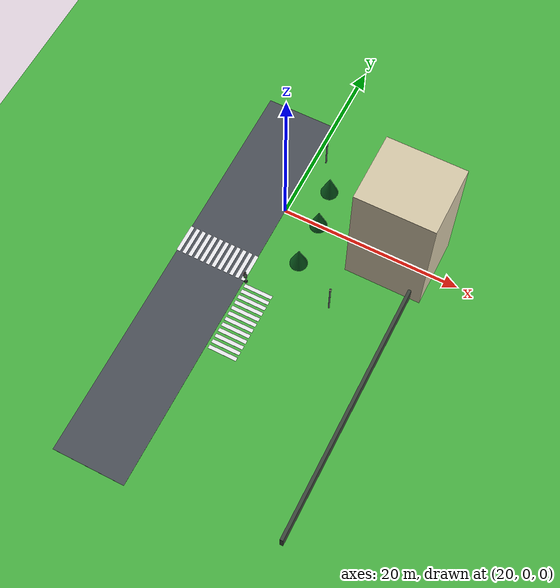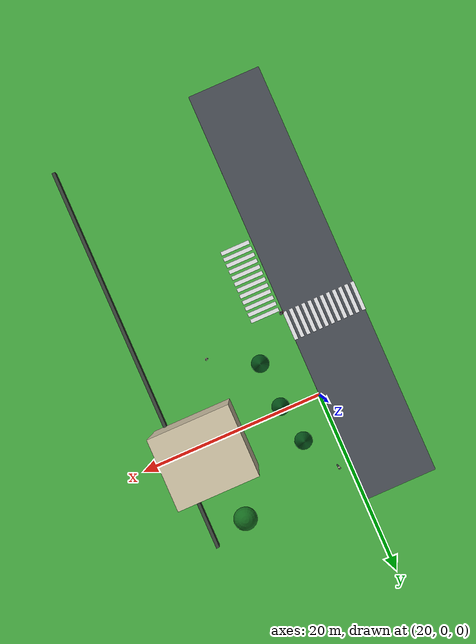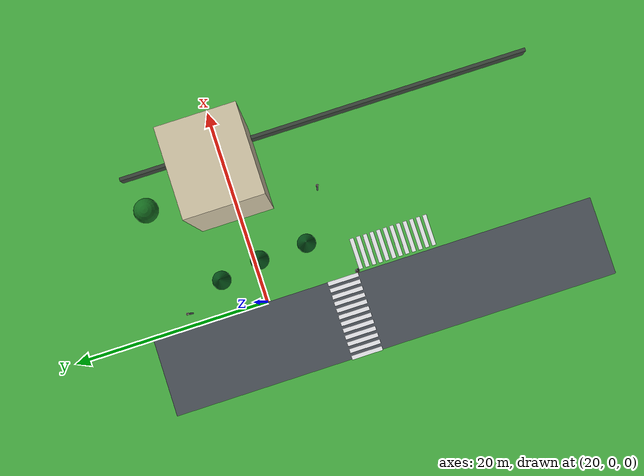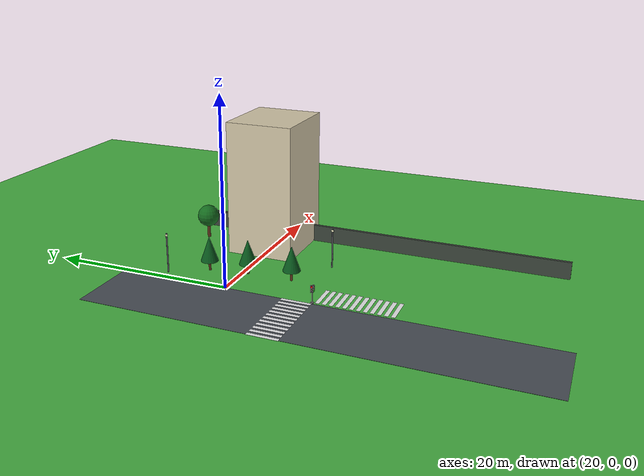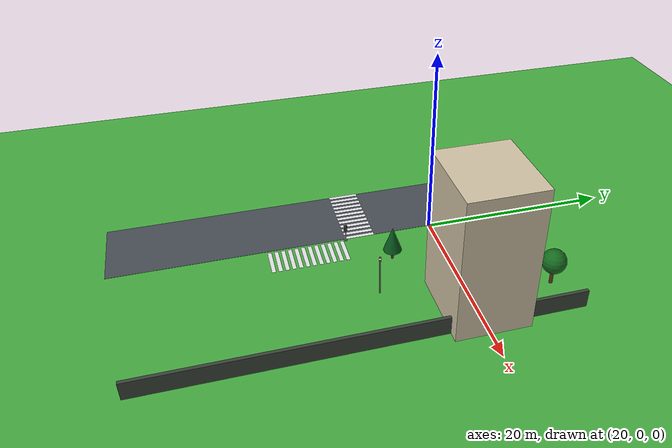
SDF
<sdf version="1.10">
 <world name="city_second">
  <model name="ground_plane">
   <static>true</static>
   <link name="link">
    <collision name="collision">
     <geometry><plane><normal>0 0 1</normal><size>45 46</size></plane></geometry>
    </collision>
    <visual name="visual">
     <geometry><plane><normal>0 0 1</normal><size>45 46</size></plane></geometry>
     <material>
      <ambient>0.280000001 0.689999998 0.25999999 1</ambient>
      <diffuse>0.280000001 0.689999998 0.25999999 1</diffuse>
      <specular>0.0299999993 0.0299999993 0.0299999993 1</specular>
     </material>
    </visual>
    <inertial>
     <mass>1</mass>
     <inertia><ixx>1</ixx><ixy>0</ixy><ixz>0</ixz><iyy>1</iyy><iyz>0</iyz><izz>1</izz></inertia>
    </inertial>
   </link>
   <pose>15.5 -11 0 0 0 0</pose>
  </model>
  <model name="road_v_2">
   <static>true</static>
   <pose>16 -11 0.01 0 0 0</pose>
   <link name="link">
    <collision name="collision"><geometry><box><size>8 46 0.02</size></box></geometry></collision>
    <visual name="visual">
     <geometry><box><size>8 46 0.02</size></box></geometry>
     <material>
      <ambient>0.289999992 0.310000002 0.340000004 1</ambient>
      <diffuse>0.289999992 0.310000002 0.340000004 1</diffuse>
      <specular>0.0299999993 0.0299999993 0.0299999993 1</specular>
     </material>
    </visual>
    <inertial>
     <mass>1</mass>
     <inertia><ixx>1</ixx><ixy>0</ixy><ixz>0</ixz><iyy>1</iyy><iyz>0</iyz><izz>1</izz></inertia>
    </inertial>
   </link>
  </model>
  <model name="house_2_3_1">
   <static>true</static>
   <pose>32.993699999999997 0.30851699999999999 7.5 0 0 0</pose>
   <link name="link">
    <collision name="collision"><geometry><box><size>8.5 7.5 15</size></box></geometry></collision>
    <visual name="visual">
     <geometry><box><size>8.5 7.5 15</size></box></geometry>
     <material>
      <ambient>0.829999983 0.779999971 0.660000026 1</ambient>
      <diffuse>0.829999983 0.779999971 0.660000026 1</diffuse>
      <specular>0.0299999993 0.0299999993 0.0299999993 1</specular>
     </material>
    </visual>
    <inertial>
     <mass>1</mass>
     <inertia><ixx>1</ixx><ixy>0</ixy><ixz>0</ixz><iyy>1</iyy><iyz>0</iyz><izz>1</izz></inertia>
    </inertial>
   </link>
  </model>
  <model name="crosswalk_v_2_1_east_5_4">
   <static>true</static>
   <pose>21.8748 -13.7462 0.017000000000000001 0 0 0</pose>
   <link name="stripe_1">
    <collision name="collision">
     <geometry><box><size>3.2000000000000002 0.41999999999999998 0.01</size></box></geometry>
    </collision>
    <visual name="visual">
     <geometry><box><size>3.2000000000000002 0.41999999999999998 0.01</size></box></geometry>
     <material>
      <ambient>0.920000017 0.920000017 0.930000007 1</ambient>
      <diffuse>0.920000017 0.920000017 0.930000007 1</diffuse>
      <specular>0.0299999993 0.0299999993 0.0299999993 1</specular>
     </material>
    </visual>
    <pose>0 -3.8500000000000001 0 0 0 0</pose>
    <inertial>
     <mass>1</mass>
     <inertia><ixx>1</ixx><ixy>0</ixy><ixz>0</ixz><iyy>1</iyy><iyz>0</iyz><izz>1</izz></inertia>
    </inertial>
   </link>
   <link name="stripe_2">
    <collision name="collision">
     <geometry><box><size>3.2000000000000002 0.41999999999999998 0.01</size></box></geometry>
    </collision>
    <visual name="visual">
     <geometry><box><size>3.2000000000000002 0.41999999999999998 0.01</size></box></geometry>
     <material>
      <ambient>0.920000017 0.920000017 0.930000007 1</ambient>
      <diffuse>0.920000017 0.920000017 0.930000007 1</diffuse>
      <specular>0.0299999993 0.0299999993 0.0299999993 1</specular>
     </material>
    </visual>
    <pose>0 -3.1500000000000004 0 0 0 0</pose>
    <inertial>
     <mass>1</mass>
     <inertia><ixx>1</ixx><ixy>0</ixy><ixz>0</ixz><iyy>1</iyy><iyz>0</iyz><izz>1</izz></inertia>
    </inertial>
   </link>
   <link name="stripe_3">
    <collision name="collision">
     <geometry><box><size>3.2000000000000002 0.41999999999999998 0.01</size></box></geometry>
    </collision>
    <visual name="visual">
     <geometry><box><size>3.2000000000000002 0.41999999999999998 0.01</size></box></geometry>
     <material>
      <ambient>0.920000017 0.920000017 0.930000007 1</ambient>
      <diffuse>0.920000017 0.920000017 0.930000007 1</diffuse>
      <specular>0.0299999993 0.0299999993 0.0299999993 1</specular>
     </material>
    </visual>
    <pose>0 -2.4500000000000011 0 0 0 0</pose>
    <inertial>
     <mass>1</mass>
     <inertia><ixx>1</ixx><ixy>0</ixy><ixz>0</ixz><iyy>1</iyy><iyz>0</iyz><izz>1</izz></inertia>
    </inertial>
   </link>
   <link name="stripe_4">
    <collision name="collision">
     <geometry><box><size>3.2000000000000002 0.41999999999999998 0.01</size></box></geometry>
    </collision>
    <visual name="visual">
     <geometry><box><size>3.2000000000000002 0.41999999999999998 0.01</size></box></geometry>
     <material>
      <ambient>0.920000017 0.920000017 0.930000007 1</ambient>
      <diffuse>0.920000017 0.920000017 0.930000007 1</diffuse>
      <specular>0.0299999993 0.0299999993 0.0299999993 1</specular>
     </material>
    </visual>
    <pose>0 -1.75 0 0 0 0</pose>
    <inertial>
     <mass>1</mass>
     <inertia><ixx>1</ixx><ixy>0</ixy><ixz>0</ixz><iyy>1</iyy><iyz>0</iyz><izz>1</izz></inertia>
    </inertial>
   </link>
   <link name="stripe_5">
    <collision name="collision">
     <geometry><box><size>3.2000000000000002 0.41999999999999998 0.01</size></box></geometry>
    </collision>
    <visual name="visual">
     <geometry><box><size>3.2000000000000002 0.41999999999999998 0.01</size></box></geometry>
     <material>
      <ambient>0.920000017 0.920000017 0.930000007 1</ambient>
      <diffuse>0.920000017 0.920000017 0.930000007 1</diffuse>
      <specular>0.0299999993 0.0299999993 0.0299999993 1</specular>
     </material>
    </visual>
    <pose>0 -1.0500000000000007 0 0 0 0</pose>
    <inertial>
     <mass>1</mass>
     <inertia><ixx>1</ixx><ixy>0</ixy><ixz>0</ixz><iyy>1</iyy><iyz>0</iyz><izz>1</izz></inertia>
    </inertial>
   </link>
   <link name="stripe_6">
    <collision name="collision">
     <geometry><box><size>3.2000000000000002 0.41999999999999998 0.01</size></box></geometry>
    </collision>
    <visual name="visual">
     <geometry><box><size>3.2000000000000002 0.41999999999999998 0.01</size></box></geometry>
     <material>
      <ambient>0.920000017 0.920000017 0.930000007 1</ambient>
      <diffuse>0.920000017 0.920000017 0.930000007 1</diffuse>
      <specular>0.0299999993 0.0299999993 0.0299999993 1</specular>
     </material>
    </visual>
    <pose>0 -0.34999999999999964 0 0 0 0</pose>
    <inertial>
     <mass>1</mass>
     <inertia><ixx>1</ixx><ixy>0</ixy><ixz>0</ixz><iyy>1</iyy><iyz>0</iyz><izz>1</izz></inertia>
    </inertial>
   </link>
   <link name="stripe_7">
    <collision name="collision">
     <geometry><box><size>3.2000000000000002 0.41999999999999998 0.01</size></box></geometry>
    </collision>
    <visual name="visual">
     <geometry><box><size>3.2000000000000002 0.41999999999999998 0.01</size></box></geometry>
     <material>
      <ambient>0.920000017 0.920000017 0.930000007 1</ambient>
      <diffuse>0.920000017 0.920000017 0.930000007 1</diffuse>
      <specular>0.0299999993 0.0299999993 0.0299999993 1</specular>
     </material>
    </visual>
    <pose>0 0.34999999999999964 0 0 0 0</pose>
    <inertial>
     <mass>1</mass>
     <inertia><ixx>1</ixx><ixy>0</ixy><ixz>0</ixz><iyy>1</iyy><iyz>0</iyz><izz>1</izz></inertia>
    </inertial>
   </link>
   <link name="stripe_8">
    <collision name="collision">
     <geometry><box><size>3.2000000000000002 0.41999999999999998 0.01</size></box></geometry>
    </collision>
    <visual name="visual">
     <geometry><box><size>3.2000000000000002 0.41999999999999998 0.01</size></box></geometry>
     <material>
      <ambient>0.920000017 0.920000017 0.930000007 1</ambient>
      <diffuse>0.920000017 0.920000017 0.930000007 1</diffuse>
      <specular>0.0299999993 0.0299999993 0.0299999993 1</specular>
     </material>
    </visual>
    <pose>0 1.0500000000000007 0 0 0 0</pose>
    <inertial>
     <mass>1</mass>
     <inertia><ixx>1</ixx><ixy>0</ixy><ixz>0</ixz><iyy>1</iyy><iyz>0</iyz><izz>1</izz></inertia>
    </inertial>
   </link>
   <link name="stripe_9">
    <collision name="collision">
     <geometry><box><size>3.2000000000000002 0.41999999999999998 0.01</size></box></geometry>
    </collision>
    <visual name="visual">
     <geometry><box><size>3.2000000000000002 0.41999999999999998 0.01</size></box></geometry>
     <material>
      <ambient>0.920000017 0.920000017 0.930000007 1</ambient>
      <diffuse>0.920000017 0.920000017 0.930000007 1</diffuse>
      <specular>0.0299999993 0.0299999993 0.0299999993 1</specular>
     </material>
    </visual>
    <pose>0 1.75 0 0 0 0</pose>
    <inertial>
     <mass>1</mass>
     <inertia><ixx>1</ixx><ixy>0</ixy><ixz>0</ixz><iyy>1</iyy><iyz>0</iyz><izz>1</izz></inertia>
    </inertial>
   </link>
   <link name="stripe_10">
    <collision name="collision">
     <geometry><box><size>3.2000000000000002 0.41999999999999998 0.01</size></box></geometry>
    </collision>
    <visual name="visual">
     <geometry><box><size>3.2000000000000002 0.41999999999999998 0.01</size></box></geometry>
     <material>
      <ambient>0.920000017 0.920000017 0.930000007 1</ambient>
      <diffuse>0.920000017 0.920000017 0.930000007 1</diffuse>
      <specular>0.0299999993 0.0299999993 0.0299999993 1</specular>
     </material>
    </visual>
    <pose>0 2.4500000000000011 0 0 0 0</pose>
    <inertial>
     <mass>1</mass>
     <inertia><ixx>1</ixx><ixy>0</ixy><ixz>0</ixz><iyy>1</iyy><iyz>0</iyz><izz>1</izz></inertia>
    </inertial>
   </link>
   <link name="stripe_11">
    <collision name="collision">
     <geometry><box><size>3.2000000000000002 0.41999999999999998 0.01</size></box></geometry>
    </collision>
    <visual name="visual">
     <geometry><box><size>3.2000000000000002 0.41999999999999998 0.01</size></box></geometry>
     <material>
      <ambient>0.920000017 0.920000017 0.930000007 1</ambient>
      <diffuse>0.920000017 0.920000017 0.930000007 1</diffuse>
      <specular>0.0299999993 0.0299999993 0.0299999993 1</specular>
     </material>
    </visual>
    <pose>0 3.1500000000000004 0 0 0 0</pose>
    <inertial>
     <mass>1</mass>
     <inertia><ixx>1</ixx><ixy>0</ixy><ixz>0</ixz><iyy>1</iyy><iyz>0</iyz><izz>1</izz></inertia>
    </inertial>
   </link>
   <link name="stripe_12">
    <collision name="collision">
     <geometry><box><size>3.2000000000000002 0.41999999999999998 0.01</size></box></geometry>
    </collision>
    <visual name="visual">
     <geometry><box><size>3.2000000000000002 0.41999999999999998 0.01</size></box></geometry>
     <material>
      <ambient>0.920000017 0.920000017 0.930000007 1</ambient>
      <diffuse>0.920000017 0.920000017 0.930000007 1</diffuse>
      <specular>0.0299999993 0.0299999993 0.0299999993 1</specular>
     </material>
    </visual>
    <pose>0 3.8499999999999996 0 0 0 0</pose>
    <inertial>
     <mass>1</mass>
     <inertia><ixx>1</ixx><ixy>0</ixy><ixz>0</ixz><iyy>1</iyy><iyz>0</iyz><izz>1</izz></inertia>
    </inertial>
   </link>
  </model>
  <model name="crosswalk_h_1_1_south_7_1">
   <static>true</static>
   <pose>15.9758 -7.8596300000000001 0.017000000000000001 0 0 0</pose>
   <link name="stripe_1">
    <collision name="collision">
     <geometry><box><size>0.41999999999999998 3.2000000000000002 0.01</size></box></geometry>
    </collision>
    <visual name="visual">
     <geometry><box><size>0.41999999999999998 3.2000000000000002 0.01</size></box></geometry>
     <material>
      <ambient>0.920000017 0.920000017 0.930000007 1</ambient>
      <diffuse>0.920000017 0.920000017 0.930000007 1</diffuse>
      <specular>0.0299999993 0.0299999993 0.0299999993 1</specular>
     </material>
    </visual>
    <pose>-3.8500000000000001 0 0 0 0 0</pose>
    <inertial>
     <mass>1</mass>
     <inertia><ixx>1</ixx><ixy>0</ixy><ixz>0</ixz><iyy>1</iyy><iyz>0</iyz><izz>1</izz></inertia>
    </inertial>
   </link>
   <link name="stripe_2">
    <collision name="collision">
     <geometry><box><size>0.41999999999999998 3.2000000000000002 0.01</size></box></geometry>
    </collision>
    <visual name="visual">
     <geometry><box><size>0.41999999999999998 3.2000000000000002 0.01</size></box></geometry>
     <material>
      <ambient>0.920000017 0.920000017 0.930000007 1</ambient>
      <diffuse>0.920000017 0.920000017 0.930000007 1</diffuse>
      <specular>0.0299999993 0.0299999993 0.0299999993 1</specular>
     </material>
    </visual>
    <pose>-3.1500000000000004 0 0 0 0 0</pose>
    <inertial>
     <mass>1</mass>
     <inertia><ixx>1</ixx><ixy>0</ixy><ixz>0</ixz><iyy>1</iyy><iyz>0</iyz><izz>1</izz></inertia>
    </inertial>
   </link>
   <link name="stripe_3">
    <collision name="collision">
     <geometry><box><size>0.41999999999999998 3.2000000000000002 0.01</size></box></geometry>
    </collision>
    <visual name="visual">
     <geometry><box><size>0.41999999999999998 3.2000000000000002 0.01</size></box></geometry>
     <material>
      <ambient>0.920000017 0.920000017 0.930000007 1</ambient>
      <diffuse>0.920000017 0.920000017 0.930000007 1</diffuse>
      <specular>0.0299999993 0.0299999993 0.0299999993 1</specular>
     </material>
    </visual>
    <pose>-2.4499999999999993 0 0 0 0 0</pose>
    <inertial>
     <mass>1</mass>
     <inertia><ixx>1</ixx><ixy>0</ixy><ixz>0</ixz><iyy>1</iyy><iyz>0</iyz><izz>1</izz></inertia>
    </inertial>
   </link>
   <link name="stripe_4">
    <collision name="collision">
     <geometry><box><size>0.41999999999999998 3.2000000000000002 0.01</size></box></geometry>
    </collision>
    <visual name="visual">
     <geometry><box><size>0.41999999999999998 3.2000000000000002 0.01</size></box></geometry>
     <material>
      <ambient>0.920000017 0.920000017 0.930000007 1</ambient>
      <diffuse>0.920000017 0.920000017 0.930000007 1</diffuse>
      <specular>0.0299999993 0.0299999993 0.0299999993 1</specular>
     </material>
    </visual>
    <pose>-1.75 0 0 0 0 0</pose>
    <inertial>
     <mass>1</mass>
     <inertia><ixx>1</ixx><ixy>0</ixy><ixz>0</ixz><iyy>1</iyy><iyz>0</iyz><izz>1</izz></inertia>
    </inertial>
   </link>
   <link name="stripe_5">
    <collision name="collision">
     <geometry><box><size>0.41999999999999998 3.2000000000000002 0.01</size></box></geometry>
    </collision>
    <visual name="visual">
     <geometry><box><size>0.41999999999999998 3.2000000000000002 0.01</size></box></geometry>
     <material>
      <ambient>0.920000017 0.920000017 0.930000007 1</ambient>
      <diffuse>0.920000017 0.920000017 0.930000007 1</diffuse>
      <specular>0.0299999993 0.0299999993 0.0299999993 1</specular>
     </material>
    </visual>
    <pose>-1.0500000000000007 0 0 0 0 0</pose>
    <inertial>
     <mass>1</mass>
     <inertia><ixx>1</ixx><ixy>0</ixy><ixz>0</ixz><iyy>1</iyy><iyz>0</iyz><izz>1</izz></inertia>
    </inertial>
   </link>
   <link name="stripe_6">
    <collision name="collision">
     <geometry><box><size>0.41999999999999998 3.2000000000000002 0.01</size></box></geometry>
    </collision>
    <visual name="visual">
     <geometry><box><size>0.41999999999999998 3.2000000000000002 0.01</size></box></geometry>
     <material>
      <ambient>0.920000017 0.920000017 0.930000007 1</ambient>
      <diffuse>0.920000017 0.920000017 0.930000007 1</diffuse>
      <specular>0.0299999993 0.0299999993 0.0299999993 1</specular>
     </material>
    </visual>
    <pose>-0.34999999999999964 0 0 0 0 0</pose>
    <inertial>
     <mass>1</mass>
     <inertia><ixx>1</ixx><ixy>0</ixy><ixz>0</ixz><iyy>1</iyy><iyz>0</iyz><izz>1</izz></inertia>
    </inertial>
   </link>
   <link name="stripe_7">
    <collision name="collision">
     <geometry><box><size>0.41999999999999998 3.2000000000000002 0.01</size></box></geometry>
    </collision>
    <visual name="visual">
     <geometry><box><size>0.41999999999999998 3.2000000000000002 0.01</size></box></geometry>
     <material>
      <ambient>0.920000017 0.920000017 0.930000007 1</ambient>
      <diffuse>0.920000017 0.920000017 0.930000007 1</diffuse>
      <specular>0.0299999993 0.0299999993 0.0299999993 1</specular>
     </material>
    </visual>
    <pose>0.35000000000000142 0 0 0 0 0</pose>
    <inertial>
     <mass>1</mass>
     <inertia><ixx>1</ixx><ixy>0</ixy><ixz>0</ixz><iyy>1</iyy><iyz>0</iyz><izz>1</izz></inertia>
    </inertial>
   </link>
   <link name="stripe_8">
    <collision name="collision">
     <geometry><box><size>0.41999999999999998 3.2000000000000002 0.01</size></box></geometry>
    </collision>
    <visual name="visual">
     <geometry><box><size>0.41999999999999998 3.2000000000000002 0.01</size></box></geometry>
     <material>
      <ambient>0.920000017 0.920000017 0.930000007 1</ambient>
      <diffuse>0.920000017 0.920000017 0.930000007 1</diffuse>
      <specular>0.0299999993 0.0299999993 0.0299999993 1</specular>
     </material>
    </visual>
    <pose>1.0500000000000007 0 0 0 0 0</pose>
    <inertial>
     <mass>1</mass>
     <inertia><ixx>1</ixx><ixy>0</ixy><ixz>0</ixz><iyy>1</iyy><iyz>0</iyz><izz>1</izz></inertia>
    </inertial>
   </link>
   <link name="stripe_9">
    <collision name="collision">
     <geometry><box><size>0.41999999999999998 3.2000000000000002 0.01</size></box></geometry>
    </collision>
    <visual name="visual">
     <geometry><box><size>0.41999999999999998 3.2000000000000002 0.01</size></box></geometry>
     <material>
      <ambient>0.920000017 0.920000017 0.930000007 1</ambient>
      <diffuse>0.920000017 0.920000017 0.930000007 1</diffuse>
      <specular>0.0299999993 0.0299999993 0.0299999993 1</specular>
     </material>
    </visual>
    <pose>1.75 0 0 0 0 0</pose>
    <inertial>
     <mass>1</mass>
     <inertia><ixx>1</ixx><ixy>0</ixy><ixz>0</ixz><iyy>1</iyy><iyz>0</iyz><izz>1</izz></inertia>
    </inertial>
   </link>
   <link name="stripe_10">
    <collision name="collision">
     <geometry><box><size>0.41999999999999998 3.2000000000000002 0.01</size></box></geometry>
    </collision>
    <visual name="visual">
     <geometry><box><size>0.41999999999999998 3.2000000000000002 0.01</size></box></geometry>
     <material>
      <ambient>0.920000017 0.920000017 0.930000007 1</ambient>
      <diffuse>0.920000017 0.920000017 0.930000007 1</diffuse>
      <specular>0.0299999993 0.0299999993 0.0299999993 1</specular>
     </material>
    </visual>
    <pose>2.4499999999999993 0 0 0 0 0</pose>
    <inertial>
     <mass>1</mass>
     <inertia><ixx>1</ixx><ixy>0</ixy><ixz>0</ixz><iyy>1</iyy><iyz>0</iyz><izz>1</izz></inertia>
    </inertial>
   </link>
   <link name="stripe_11">
    <collision name="collision">
     <geometry><box><size>0.41999999999999998 3.2000000000000002 0.01</size></box></geometry>
    </collision>
    <visual name="visual">
     <geometry><box><size>0.41999999999999998 3.2000000000000002 0.01</size></box></geometry>
     <material>
      <ambient>0.920000017 0.920000017 0.930000007 1</ambient>
      <diffuse>0.920000017 0.920000017 0.930000007 1</diffuse>
      <specular>0.0299999993 0.0299999993 0.0299999993 1</specular>
     </material>
    </visual>
    <pose>3.1499999999999986 0 0 0 0 0</pose>
    <inertial>
     <mass>1</mass>
     <inertia><ixx>1</ixx><ixy>0</ixy><ixz>0</ixz><iyy>1</iyy><iyz>0</iyz><izz>1</izz></inertia>
    </inertial>
   </link>
   <link name="stripe_12">
    <collision name="collision">
     <geometry><box><size>0.41999999999999998 3.2000000000000002 0.01</size></box></geometry>
    </collision>
    <visual name="visual">
     <geometry><box><size>0.41999999999999998 3.2000000000000002 0.01</size></box></geometry>
     <material>
      <ambient>0.920000017 0.920000017 0.930000007 1</ambient>
      <diffuse>0.920000017 0.920000017 0.930000007 1</diffuse>
      <specular>0.0299999993 0.0299999993 0.0299999993 1</specular>
     </material>
    </visual>
    <pose>3.8500000000000014 0 0 0 0 0</pose>
    <inertial>
     <mass>1</mass>
     <inertia><ixx>1</ixx><ixy>0</ixy><ixz>0</ixz><iyy>1</iyy><iyz>0</iyz><izz>1</izz></inertia>
    </inertial>
   </link>
  </model>
  <model name="lamp_1_2_7">
   <static>true</static>
   <pose>29.188400000000001 -8.1782299999999992 2.2000000000000002 0 0 0</pose>
   <link name="link">
    <collision name="collision">
     <geometry>
      <cylinder><radius>0.080000000000000002</radius><length>4.4000000000000004</length></cylinder>
     </geometry>
    </collision>
    <visual name="pole">
     <geometry>
      <cylinder><radius>0.080000000000000002</radius><length>4.4000000000000004</length></cylinder>
     </geometry>
     <material>
      <ambient>0.349999994 0.360000014 0.379999995 1</ambient>
      <diffuse>0.349999994 0.360000014 0.379999995 1</diffuse>
      <specular>0.0299999993 0.0299999993 0.0299999993 1</specular>
     </material>
    </visual>
    <visual name="lamp_head">
     <pose>0 0 2 0 0 0</pose>
     <geometry><sphere><radius>0.14000000000000001</radius></sphere></geometry>
     <material>
      <ambient>0.959999979 0.939999998 0.779999971 1</ambient>
      <diffuse>0.959999979 0.939999998 0.779999971 1</diffuse>
      <specular>0.0299999993 0.0299999993 0.0299999993 1</specular>
     </material>
    </visual>
    <inertial>
     <mass>1</mass>
     <inertia><ixx>1</ixx><ixy>0</ixy><ixz>0</ixz><iyy>1</iyy><iyz>0</iyz><izz>1</izz></inertia>
    </inertial>
   </link>
  </model>
  <model name="lamp_1_2_13">
   <static>true</static>
   <pose>21.219799999999999 7.4495699999999996 2.2000000000000002 0 0 0</pose>
   <link name="link">
    <collision name="collision">
     <geometry>
      <cylinder><radius>0.080000000000000002</radius><length>4.4000000000000004</length></cylinder>
     </geometry>
    </collision>
    <visual name="pole">
     <geometry>
      <cylinder><radius>0.080000000000000002</radius><length>4.4000000000000004</length></cylinder>
     </geometry>
     <material>
      <ambient>0.349999994 0.360000014 0.379999995 1</ambient>
      <diffuse>0.349999994 0.360000014 0.379999995 1</diffuse>
      <specular>0.0299999993 0.0299999993 0.0299999993 1</specular>
     </material>
    </visual>
    <visual name="lamp_head">
     <pose>0 0 2 0 0 0</pose>
     <geometry><sphere><radius>0.14000000000000001</radius></sphere></geometry>
     <material>
      <ambient>0.959999979 0.939999998 0.779999971 1</ambient>
      <diffuse>0.959999979 0.939999998 0.779999971 1</diffuse>
      <specular>0.0299999993 0.0299999993 0.0299999993 1</specular>
     </material>
    </visual>
    <inertial>
     <mass>1</mass>
     <inertia><ixx>1</ixx><ixy>0</ixy><ixz>0</ixz><iyy>1</iyy><iyz>0</iyz><izz>1</izz></inertia>
    </inertial>
   </link>
  </model>
  <model name="Oak tree_0">
   <static>true</static>
   <pose>32.146799999999999 8.4817300000000007 0 0 0 0</pose>
   <link name="link">
    <collision name="footprint">
     <pose>0 0 0.050000000000000003 0 0 0</pose>
     <geometry>
      <cylinder><radius>0.90000000000000002</radius><length>0.10000000000000001</length></cylinder>
     </geometry>
    </collision>
    <visual name="trunk">
     <pose>0 0 1.1000000000000001 0 0 0</pose>
     <geometry>
      <cylinder><radius>0.17999999999999999</radius><length>2.2000000000000002</length></cylinder>
     </geometry>
     <material>
      <ambient>0.379999995 0.219999999 0.109999999 1</ambient>
      <diffuse>0.379999995 0.219999999 0.109999999 1</diffuse>
      <specular>0.119999997 0.119999997 0.119999997 1</specular>
      <emissive>0 0 0 1</emissive>
     </material>
    </visual>
    <visual name="crown">
     <pose>0 0 2.6499999999999999 0 0 0</pose>
     <geometry><sphere><radius>1.25</radius></sphere></geometry>
     <material>
      <ambient>0.0799999982 0.419999987 0.119999997 1</ambient>
      <diffuse>0.0799999982 0.419999987 0.119999997 1</diffuse>
      <specular>0.119999997 0.119999997 0.119999997 1</specular>
      <emissive>0 0 0 1</emissive>
     </material>
    </visual>
    <inertial>
     <mass>1</mass>
     <inertia><ixx>1</ixx><ixy>0</ixy><ixz>0</ixz><iyy>1</iyy><iyz>0</iyz><izz>1</izz></inertia>
    </inertial>
   </link>
  </model>
  <model name="Pine Tree_9">
   <static>true</static>
   <pose>23.437200000000001 3.6228500000000001 0 0 0 0</pose>
   <link name="link">
    <collision name="footprint">
     <pose>0 0 0.050000000000000003 0 0 0</pose>
     <geometry>
      <cylinder><radius>0.65000000000000002</radius><length>0.10000000000000001</length></cylinder>
     </geometry>
    </collision>
    <visual name="trunk">
     <pose>0 0 0.90000000000000002 0 0 0</pose>
     <geometry><cylinder><radius>0.13</radius><length>1.8</length></cylinder></geometry>
     <material>
      <ambient>0.360000014 0.200000003 0.100000001 1</ambient>
      <diffuse>0.360000014 0.200000003 0.100000001 1</diffuse>
      <specular>0.119999997 0.119999997 0.119999997 1</specular>
      <emissive>0 0 0 1</emissive>
     </material>
    </visual>
    <visual name="crown">
     <pose>0 0 2.4500000000000002 0 0 0</pose>
     <geometry><cone><radius>0.94999999999999996</radius><length>2.7000000000000002</length></cone></geometry>
     <material>
      <ambient>0.0299999993 0.340000004 0.109999999 1</ambient>
      <diffuse>0.0299999993 0.340000004 0.109999999 1</diffuse>
      <specular>0.119999997 0.119999997 0.119999997 1</specular>
      <emissive>0 0 0 1</emissive>
     </material>
    </visual>
    <inertial>
     <mass>1</mass>
     <inertia><ixx>1</ixx><ixy>0</ixy><ixz>0</ixz><iyy>1</iyy><iyz>0</iyz><izz>1</izz></inertia>
    </inertial>
   </link>
  </model>
  <model name="Pine Tree_10">
   <static>true</static>
   <pose>24.3462 -5.4889299999999999 0 0 0 0</pose>
   <link name="link">
    <collision name="footprint">
     <pose>0 0 0.050000000000000003 0 0 0</pose>
     <geometry>
      <cylinder><radius>0.65000000000000002</radius><length>0.10000000000000001</length></cylinder>
     </geometry>
    </collision>
    <visual name="trunk">
     <pose>0 0 0.90000000000000002 0 0 0</pose>
     <geometry><cylinder><radius>0.13</radius><length>1.8</length></cylinder></geometry>
     <material>
      <ambient>0.360000014 0.200000003 0.100000001 1</ambient>
      <diffuse>0.360000014 0.200000003 0.100000001 1</diffuse>
      <specular>0.119999997 0.119999997 0.119999997 1</specular>
      <emissive>0 0 0 1</emissive>
     </material>
    </visual>
    <visual name="crown">
     <pose>0 0 2.4500000000000002 0 0 0</pose>
     <geometry><cone><radius>0.94999999999999996</radius><length>2.7000000000000002</length></cone></geometry>
     <material>
      <ambient>0.0299999993 0.340000004 0.109999999 1</ambient>
      <diffuse>0.0299999993 0.340000004 0.109999999 1</diffuse>
      <specular>0.119999997 0.119999997 0.119999997 1</specular>
      <emissive>0 0 0 1</emissive>
     </material>
    </visual>
    <inertial>
     <mass>1</mass>
     <inertia><ixx>1</ixx><ixy>0</ixy><ixz>0</ixz><iyy>1</iyy><iyz>0</iyz><izz>1</izz></inertia>
    </inertial>
   </link>
  </model>
  <model name="Pine Tree_13">
   <static>true</static>
   <pose>24.1953 -0.55246899999999999 0 0 0 0</pose>
   <link name="link">
    <collision name="footprint">
     <pose>0 0 0.050000000000000003 0 0 0</pose>
     <geometry>
      <cylinder><radius>0.65000000000000002</radius><length>0.10000000000000001</length></cylinder>
     </geometry>
    </collision>
    <visual name="trunk">
     <pose>0 0 0.90000000000000002 0 0 0</pose>
     <geometry><cylinder><radius>0.13</radius><length>1.8</length></cylinder></geometry>
     <material>
      <ambient>0.360000014 0.200000003 0.100000001 1</ambient>
      <diffuse>0.360000014 0.200000003 0.100000001 1</diffuse>
      <specular>0.119999997 0.119999997 0.119999997 1</specular>
      <emissive>0 0 0 1</emissive>
     </material>
    </visual>
    <visual name="crown">
     <pose>0 0 2.4500000000000002 0 0 0</pose>
     <geometry><cone><radius>0.94999999999999996</radius><length>2.7000000000000002</length></cone></geometry>
     <material>
      <ambient>0.0299999993 0.340000004 0.109999999 1</ambient>
      <diffuse>0.0299999993 0.340000004 0.109999999 1</diffuse>
      <specular>0.119999997 0.119999997 0.119999997 1</specular>
      <emissive>0 0 0 1</emissive>
     </material>
    </visual>
    <inertial>
     <mass>1</mass>
     <inertia><ixx>1</ixx><ixy>0</ixy><ixz>0</ixz><iyy>1</iyy><iyz>0</iyz><izz>1</izz></inertia>
    </inertial>
   </link>
  </model>
  <model name="simple_traffic_light_red_west_2">
   <static>true</static>
   <pose>20.209085163271727 -9.432895705974973 -2.7755575615628914e-17 0 0 1.570799967267172</pose>
   <link name="base">
    <pose>0 0 0.040000000000000001 0 0 0</pose>
    <collision name="collision">
     <geometry>
      <cylinder><radius>0.17999999999999999</radius><length>0.080000000000000002</length></cylinder>
     </geometry>
    </collision>
    <visual name="visual">
     <geometry>
      <cylinder><radius>0.17999999999999999</radius><length>0.080000000000000002</length></cylinder>
     </geometry>
     <material>
      <ambient>0.0799999982 0.0799999982 0.0799999982 1</ambient>
      <diffuse>0.0799999982 0.0799999982 0.0799999982 1</diffuse>
      <specular>0.150000006 0.150000006 0.150000006 1</specular>
      <emissive>0 0 0 1</emissive>
     </material>
    </visual>
    <inertial>
     <mass>1</mass>
     <inertia><ixx>1</ixx><ixy>0</ixy><ixz>0</ixz><iyy>1</iyy><iyz>0</iyz><izz>1</izz></inertia>
    </inertial>
   </link>
   <link name="pole">
    <pose>-7.1054273576010019e-15 -1.4210854715202004e-14 0.80000000000000004 0 0 3.3306690738754696e-16</pose>
    <collision name="collision">
     <geometry>
      <cylinder><radius>0.044999999999999998</radius><length>1.6000000000000001</length></cylinder>
     </geometry>
    </collision>
    <visual name="visual">
     <geometry>
      <cylinder><radius>0.044999999999999998</radius><length>1.6000000000000001</length></cylinder>
     </geometry>
     <material>
      <ambient>0.0799999982 0.0799999982 0.0799999982 1</ambient>
      <diffuse>0.0799999982 0.0799999982 0.0799999982 1</diffuse>
      <specular>0.150000006 0.150000006 0.150000006 1</specular>
      <emissive>0 0 0 1</emissive>
     </material>
    </visual>
    <inertial>
     <mass>1</mass>
     <inertia><ixx>1</ixx><ixy>0</ixy><ixz>0</ixz><iyy>1</iyy><iyz>0</iyz><izz>1</izz></inertia>
    </inertial>
   </link>
   <link name="signal_box">
    <pose>-1.7763568394002505e-14 0.0899999999999892 1.5500000000000003 0 0 3.3306690738754696e-16</pose>
    <collision name="collision">
     <geometry><box><size>0.34000000000000002 0.16 0.71999999999999997</size></box></geometry>
    </collision>
    <visual name="visual">
     <geometry><box><size>0.34000000000000002 0.16 0.71999999999999997</size></box></geometry>
     <material>
      <ambient>0.0199999996 0.0199999996 0.0199999996 1</ambient>
      <diffuse>0.0199999996 0.0199999996 0.0199999996 1</diffuse>
      <specular>0.150000006 0.150000006 0.150000006 1</specular>
      <emissive>0 0 0 1</emissive>
     </material>
    </visual>
    <inertial>
     <mass>1</mass>
     <inertia><ixx>1</ixx><ixy>0</ixy><ixz>0</ixz><iyy>1</iyy><iyz>0</iyz><izz>1</izz></inertia>
    </inertial>
   </link>
   <link name="red_lens">
    <pose>-7.1054273576010019e-15 0.18099999999998673 1.7800000000000002 1.5707963268 -3.1401849173114599e-16 -2.198129442158087e-15</pose>
    <collision name="collision">
     <geometry><cylinder><radius>0.105</radius><length>0.035000000000000003</length></cylinder></geometry>
    </collision>
    <visual name="visual">
     <geometry><cylinder><radius>0.105</radius><length>0.035000000000000003</length></cylinder></geometry>
     <material>
      <ambient>1 0.0199999996 0.0199999996 1</ambient>
      <diffuse>1 0.0199999996 0.0199999996 1</diffuse>
      <specular>0.150000006 0.150000006 0.150000006 1</specular>
      <emissive>1 0.0199999996 0.0199999996 1</emissive>
     </material>
    </visual>
    <inertial>
     <mass>1</mass>
     <inertia><ixx>1</ixx><ixy>0</ixy><ixz>0</ixz><iyy>1</iyy><iyz>0</iyz><izz>1</izz></inertia>
    </inertial>
   </link>
   <link name="yellow_lens">
    <pose>-1.7763568394002505e-14 0.1819999999999915 1.5500000000000003 1.5707963268 -3.1401849173114599e-16 -2.198129442158087e-15</pose>
    <collision name="collision">
     <geometry>
      <cylinder><radius>0.095000000000000001</radius><length>0.035000000000000003</length></cylinder>
     </geometry>
    </collision>
    <visual name="visual">
     <geometry>
      <cylinder><radius>0.095000000000000001</radius><length>0.035000000000000003</length></cylinder>
     </geometry>
     <material>
      <ambient>0.119999997 0.100000001 0.0199999996 1</ambient>
      <diffuse>0.119999997 0.100000001 0.0199999996 1</diffuse>
      <specular>0.150000006 0.150000006 0.150000006 1</specular>
      <emissive>0 0 0 1</emissive>
     </material>
    </visual>
    <inertial>
     <mass>1</mass>
     <inertia><ixx>1</ixx><ixy>0</ixy><ixz>0</ixz><iyy>1</iyy><iyz>0</iyz><izz>1</izz></inertia>
    </inertial>
   </link>
   <link name="green_lens">
    <pose>-1.0658141036401503e-14 0.18299999999999628 1.3199999999999998 1.5707963268 -3.1401849173114599e-16 -2.198129442158087e-15</pose>
    <collision name="collision">
     <geometry><cylinder><radius>0.105</radius><length>0.035000000000000003</length></cylinder></geometry>
    </collision>
    <visual name="visual">
     <geometry><cylinder><radius>0.105</radius><length>0.035000000000000003</length></cylinder></geometry>
     <material>
      <ambient>0.0799999982 0.0799999982 0.0799999982 1</ambient>
      <diffuse>0.0799999982 0.0799999982 0.0799999982 1</diffuse>
      <specular>0.150000006 0.150000006 0.150000006 1</specular>
      <emissive>0 0 0 1</emissive>
     </material>
    </visual>
    <inertial>
     <mass>1</mass>
     <inertia><ixx>1</ixx><ixy>0</ixy><ixz>0</ixz><iyy>1</iyy><iyz>0</iyz><izz>1</izz></inertia>
    </inertial>
   </link>
  </model>
  <model name="simple_traffic_light_green_south_1_2">
   <static>true</static>
   <pose>20.220117694941631 -9.4223803089731213 0 0 0 -3.1415900000000754</pose>
   <link name="base">
    <pose>0 0 0.040000000000000001 0 0 0</pose>
    <collision name="collision">
     <geometry>
      <cylinder><radius>0.17999999999999999</radius><length>0.080000000000000002</length></cylinder>
     </geometry>
    </collision>
    <visual name="visual">
     <geometry>
      <cylinder><radius>0.17999999999999999</radius><length>0.080000000000000002</length></cylinder>
     </geometry>
     <material>
      <ambient>0.0799999982 0.0799999982 0.0799999982 1</ambient>
      <diffuse>0.0799999982 0.0799999982 0.0799999982 1</diffuse>
      <specular>0.150000006 0.150000006 0.150000006 1</specular>
      <emissive>0 0 0 1</emissive>
     </material>
    </visual>
    <inertial>
     <mass>1</mass>
     <inertia><ixx>1</ixx><ixy>0</ixy><ixz>0</ixz><iyy>1</iyy><iyz>0</iyz><izz>1</izz></inertia>
    </inertial>
   </link>
   <link name="pole">
    <pose>-1.0658141036401503e-14 5.3290705182007514e-15 0.80000000000000038 0 0 0</pose>
    <collision name="collision">
     <geometry>
      <cylinder><radius>0.044999999999999998</radius><length>1.6000000000000001</length></cylinder>
     </geometry>
    </collision>
    <visual name="visual">
     <geometry>
      <cylinder><radius>0.044999999999999998</radius><length>1.6000000000000001</length></cylinder>
     </geometry>
     <material>
      <ambient>0.0799999982 0.0799999982 0.0799999982 1</ambient>
      <diffuse>0.0799999982 0.0799999982 0.0799999982 1</diffuse>
      <specular>0.150000006 0.150000006 0.150000006 1</specular>
      <emissive>0 0 0 1</emissive>
     </material>
    </visual>
    <inertial>
     <mass>1</mass>
     <inertia><ixx>1</ixx><ixy>0</ixy><ixz>0</ixz><iyy>1</iyy><iyz>0</iyz><izz>1</izz></inertia>
    </inertial>
   </link>
   <link name="signal_box">
    <pose>0 0.090000000000015845 1.5500000000000007 0 0 0</pose>
    <collision name="collision">
     <geometry><box><size>0.34000000000000002 0.16 0.71999999999999997</size></box></geometry>
    </collision>
    <visual name="visual">
     <geometry><box><size>0.34000000000000002 0.16 0.71999999999999997</size></box></geometry>
     <material>
      <ambient>0.0199999996 0.0199999996 0.0199999996 1</ambient>
      <diffuse>0.0199999996 0.0199999996 0.0199999996 1</diffuse>
      <specular>0.150000006 0.150000006 0.150000006 1</specular>
      <emissive>0 0 0 1</emissive>
     </material>
    </visual>
    <inertial>
     <mass>1</mass>
     <inertia><ixx>1</ixx><ixy>0</ixy><ixz>0</ixz><iyy>1</iyy><iyz>0</iyz><izz>1</izz></inertia>
    </inertial>
   </link>
   <link name="red_lens">
    <pose>-1.0658141036401503e-14 0.1810000000000116 1.78 1.5707963267999998 1.2475048931562623e-16 -1.2475078878636004e-16</pose>
    <collision name="collision">
     <geometry><cylinder><radius>0.105</radius><length>0.035000000000000003</length></cylinder></geometry>
    </collision>
    <visual name="visual">
     <geometry><cylinder><radius>0.105</radius><length>0.035000000000000003</length></cylinder></geometry>
     <material>
      <ambient>0.0799999982 0.0799999982 0.0799999982 1</ambient>
      <diffuse>0.0799999982 0.0799999982 0.0799999982 1</diffuse>
      <specular>0.150000006 0.150000006 0.150000006 1</specular>
      <emissive>0 0 0 1</emissive>
     </material>
    </visual>
    <inertial>
     <mass>1</mass>
     <inertia><ixx>1</ixx><ixy>0</ixy><ixz>0</ixz><iyy>1</iyy><iyz>0</iyz><izz>1</izz></inertia>
    </inertial>
   </link>
   <link name="yellow_lens">
    <pose>0 0.18200000000000571 1.5500000000000007 1.5707963267999998 1.2475048931562623e-16 -1.2475078878636004e-16</pose>
    <collision name="collision">
     <geometry>
      <cylinder><radius>0.095000000000000001</radius><length>0.035000000000000003</length></cylinder>
     </geometry>
    </collision>
    <visual name="visual">
     <geometry>
      <cylinder><radius>0.095000000000000001</radius><length>0.035000000000000003</length></cylinder>
     </geometry>
     <material>
      <ambient>0.119999997 0.100000001 0.0199999996 1</ambient>
      <diffuse>0.119999997 0.100000001 0.0199999996 1</diffuse>
      <specular>0.150000006 0.150000006 0.150000006 1</specular>
      <emissive>0 0 0 1</emissive>
     </material>
    </visual>
    <inertial>
     <mass>1</mass>
     <inertia><ixx>1</ixx><ixy>0</ixy><ixz>0</ixz><iyy>1</iyy><iyz>0</iyz><izz>1</izz></inertia>
    </inertial>
   </link>
   <link name="green_lens">
    <pose>-1.0658141036401503e-14 0.18300000000001049 1.3200000000000007 1.5707963267999998 1.2475048931562623e-16 -1.2475078878636004e-16</pose>
    <collision name="collision">
     <geometry><cylinder><radius>0.105</radius><length>0.035000000000000003</length></cylinder></geometry>
    </collision>
    <visual name="visual">
     <geometry><cylinder><radius>0.105</radius><length>0.035000000000000003</length></cylinder></geometry>
     <material>
      <ambient>0.0199999996 1 0.0199999996 1</ambient>
      <diffuse>0.0199999996 1 0.0199999996 1</diffuse>
      <specular>0.150000006 0.150000006 0.150000006 1</specular>
      <emissive>0.0199999996 1 0.0199999996 1</emissive>
     </material>
    </visual>
    <inertial>
     <mass>1</mass>
     <inertia><ixx>1</ixx><ixy>0</ixy><ixz>0</ixz><iyy>1</iyy><iyz>0</iyz><izz>1</izz></inertia>
    </inertial>
   </link>
  </model>
  <model name="crop_fence_east">
   <static>true</static>
   <pose>36.0 -11.0 0.95 0 0 0</pose>
   <link name="link">
    <collision name="collision"><geometry><box><size>0.35 42.35 1.9</size></box></geometry></collision>
    <visual name="visual">
     <geometry><box><size>0.35 42.35 1.9</size></box></geometry>
     <material>
      <ambient>0.23 0.27 0.23 1</ambient>
      <diffuse>0.23 0.27 0.23 1</diffuse>
      <specular>0.03 0.03 0.03 1</specular>
     </material>
    </visual>
   </link>
  </model>
 </world>
</sdf>
